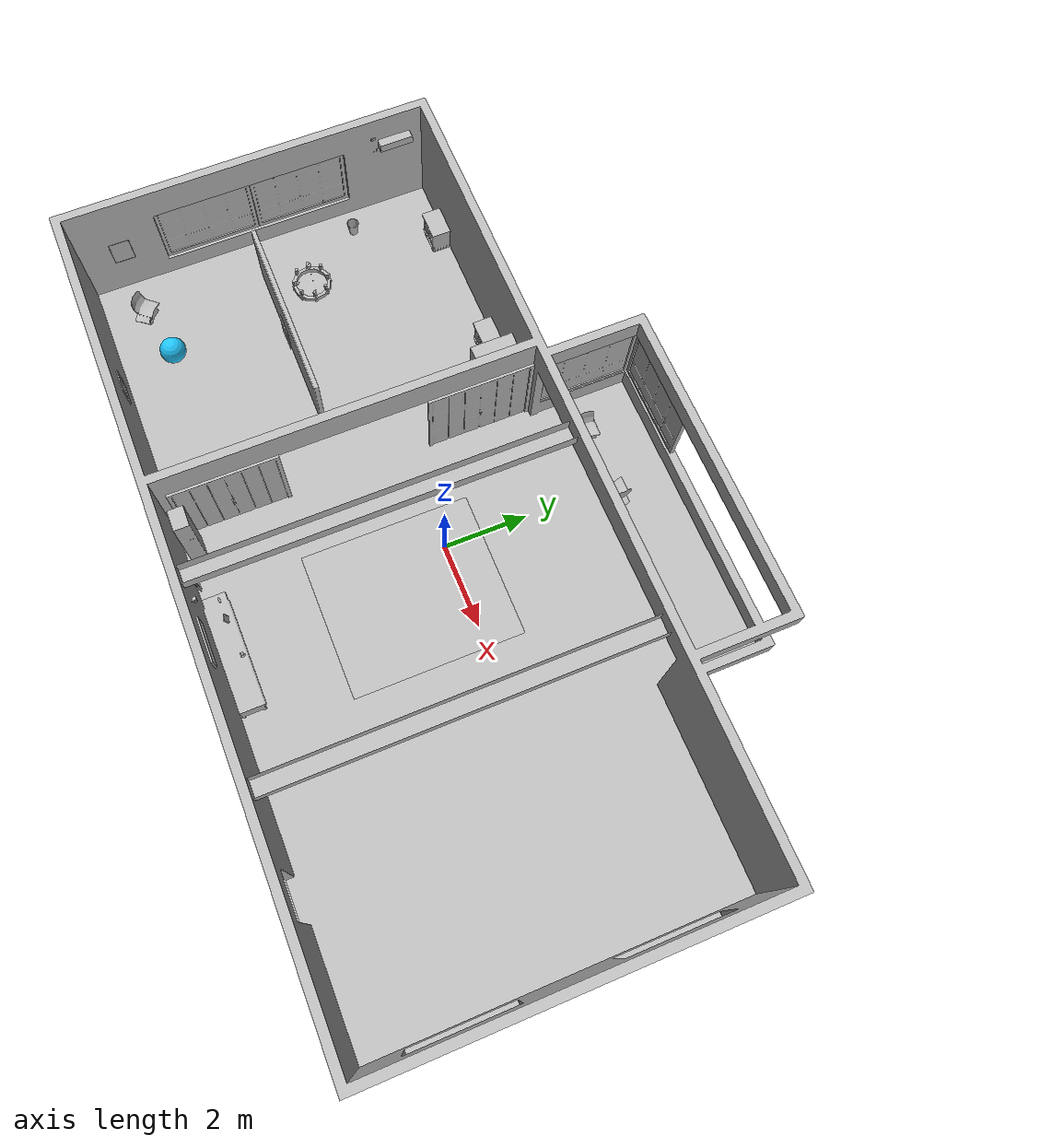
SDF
<sdf version="1.6">
 <world name="default">
  <model name="AirconditionerA_01_001">
   <link name="aws_robomaker_residential_AirconditionerA_01::link">
    <inertial><mass>1</mass></inertial>
    <collision name="collision">
     <geometry>
      <mesh>
       <uri>file://models/aws_robomaker_residential_AirconditionerA_01/meshes/aws_AirconditionerA_01_collision.DAE</uri>
       <scale>1 1 1</scale>
      </mesh>
     </geometry>
    </collision>
    <visual name="visual">
     <geometry>
      <mesh>
       <uri>file://models/aws_robomaker_residential_AirconditionerA_01/meshes/aws_AirconditionerA_01_visual.DAE</uri>
      </mesh>
     </geometry>
     <meta><layer>1</layer></meta>
    </visual>
   </link>
   <static>1</static>
   <pose>-9.19941 2.41123 2.08454 0 -0 0</pose>
  </model>
  <model name="AirconditionerB_01_001">
   <link name="aws_robomaker_residential_AirconditionerB_01::link">
    <inertial>
     <mass>1</mass>
     <inertia><ixx>1</ixx><ixy>0</ixy><ixz>0</ixz><iyy>1</iyy><iyz>0</iyz><izz>1</izz></inertia>
    </inertial>
    <collision name="collision">
     <geometry>
      <mesh>
       <uri>file://models/aws_robomaker_residential_AirconditionerB_01/meshes/aws_AirconditionerB_01_collision.DAE</uri>
       <scale>1 1 1</scale>
      </mesh>
     </geometry>
    </collision>
    <visual name="visual">
     <geometry>
      <mesh>
       <uri>file://models/aws_robomaker_residential_AirconditionerB_01/meshes/aws_AirconditionerB_01_visual.DAE</uri>
      </mesh>
     </geometry>
     <meta><layer>1</layer></meta>
    </visual>
   </link>
   <pose>-2.00466 -5.22661 0.003485 -0 -0 -0</pose>
  </model>
  <model name="Ball_01_003">
   <link name="aws_robomaker_residential_Ball_01::link">
    <inertial>
     <mass>0.12</mass>
     <inertia>
      <ixx>0.030752</ixx>
      <ixy>0</ixy>
      <ixz>0</ixz>
      <iyy>0.030752</iyy>
      <iyz>0</iyz>
      <izz>0.030752</izz>
     </inertia>
    </inertial>
    <collision name="collision">
     <geometry><sphere><radius>0.31</radius></sphere></geometry>
     <surface>
      <friction><ode><mu>0.85</mu><mu2>0.85</mu2></ode></friction>
      <contact><ode><kd>8500</kd><max_vel>5.1</max_vel></ode></contact>
     </surface>
    </collision>
    <visual name="visual">
     <geometry><sphere><radius>0.31</radius></sphere></geometry>
     <material><diffuse>0.12 0.76 0.97 1</diffuse><ambient>0.03 0.21 0.27 1</ambient></material>
     <meta><layer>1</layer></meta>
    </visual>
   </link>
   <pose>-6.9455 -4.22174 0.31 0 -0 0</pose>
  </model>
  <model name="NightStand_01_001">
   <link name="aws_robomaker_residential_NightStand_01::link">
    <inertial>
     <mass>13.6</mass>
     <inertia><ixx>0.6165</ixx><ixy>0</ixy><ixz>0</ixz><iyy>1.29664</iyy><iyz>0</iyz><izz>0.7706</izz></inertia>
    </inertial>
    <collision name="collision">
     <geometry>
      <mesh>
       <uri>file://models/aws_robomaker_residential_NightStand_01/meshes/aws_NightStand_01_collision.DAE</uri>
       <scale>1 1 1</scale>
      </mesh>
     </geometry>
    </collision>
    <visual name="visual">
     <geometry>
      <mesh>
       <uri>file://models/aws_robomaker_residential_NightStand_01/meshes/aws_NightStand_01_visual.DAE</uri>
      </mesh>
     </geometry>
     <meta><layer>1</layer></meta>
    </visual>
   </link>
   <static>1</static>
   <pose>-7.72551 2.86042 0.005258 -2e-06 0 0</pose>
  </model>
  <model name="NightStand_01_002">
   <link name="aws_robomaker_residential_NightStand_01::link">
    <inertial>
     <mass>13.6</mass>
     <inertia><ixx>0.6165</ixx><ixy>0</ixy><ixz>0</ixz><iyy>1.29664</iyy><iyz>0</iyz><izz>0.7706</izz></inertia>
    </inertial>
    <collision name="collision">
     <geometry>
      <mesh>
       <uri>file://models/aws_robomaker_residential_NightStand_01/meshes/aws_NightStand_01_collision.DAE</uri>
       <scale>1 1 1</scale>
      </mesh>
     </geometry>
    </collision>
    <visual name="visual">
     <geometry>
      <mesh>
       <uri>file://models/aws_robomaker_residential_NightStand_01/meshes/aws_NightStand_01_visual.DAE</uri>
      </mesh>
     </geometry>
     <meta><layer>1</layer></meta>
    </visual>
   </link>
   <static>1</static>
   <pose>-4.40734 2.86042 0.005256 0 2e-06 0</pose>
  </model>
  <model name="ChairD_01_001">
   <link name="aws_robomaker_residential_ChairD_01::link">
    <inertial>
     <mass>4.5</mass>
     <inertia><ixy>0</ixy><ixz>0</ixz><iyz>0</iyz><ixx>0.217</ixx><iyy>0.217</iyy><izz>0.067</izz></inertia>
    </inertial>
    <collision name="collision">
     <geometry>
      <mesh>
       <uri>file://models/aws_robomaker_residential_ChairD_01/meshes/aws_ChairD_01_collision.DAE</uri>
       <scale>1 1 1</scale>
      </mesh>
     </geometry>
    </collision>
    <visual name="visual">
     <geometry>
      <mesh><uri>file://models/aws_robomaker_residential_ChairD_01/meshes/aws_ChairD_01_visual.DAE</uri></mesh>
     </geometry>
     <meta><layer>1</layer></meta>
    </visual>
   </link>
   <pose>-1.38078 4.10446 -0.000249 0 0.000976 0</pose>
  </model>
  <model name="ChairD_01_002">
   <link name="aws_robomaker_residential_ChairD_01::link">
    <inertial>
     <mass>4.5</mass>
     <inertia><ixy>0</ixy><ixz>0</ixz><iyz>0</iyz><ixx>0.217</ixx><iyy>0.217</iyy><izz>0.067</izz></inertia>
    </inertial>
    <collision name="collision">
     <geometry>
      <mesh>
       <uri>file://models/aws_robomaker_residential_ChairD_01/meshes/aws_ChairD_01_collision.DAE</uri>
       <scale>1 1 1</scale>
      </mesh>
     </geometry>
    </collision>
    <visual name="visual">
     <geometry>
      <mesh><uri>file://models/aws_robomaker_residential_ChairD_01/meshes/aws_ChairD_01_visual.DAE</uri></mesh>
     </geometry>
     <meta><layer>1</layer></meta>
    </visual>
   </link>
   <pose>0.325214 4.10446 -0.000249 0 0.000976 -3.13874</pose>
  </model>
  <model name="ChairD_01_003">
   <link name="aws_robomaker_residential_ChairD_01::link">
    <inertial>
     <mass>4.5</mass>
     <inertia><ixy>0</ixy><ixz>0</ixz><iyz>0</iyz><ixx>0.217</ixx><iyy>0.217</iyy><izz>0.067</izz></inertia>
    </inertial>
    <collision name="collision">
     <geometry>
      <mesh>
       <uri>file://models/aws_robomaker_residential_ChairD_01/meshes/aws_ChairD_01_collision.DAE</uri>
       <scale>1 1 1</scale>
      </mesh>
     </geometry>
    </collision>
    <visual name="visual">
     <geometry>
      <mesh><uri>file://models/aws_robomaker_residential_ChairD_01/meshes/aws_ChairD_01_visual.DAE</uri></mesh>
     </geometry>
     <meta><layer>1</layer></meta>
    </visual>
   </link>
   <pose>-8.27078 -4.50446 -0.000249 0 0.000976 0.869673</pose>
  </model>
  <model name="Chandelier_01_002">
   <link name="aws_robomaker_residential_Chandelier_01::link">
    <inertial><mass>1</mass></inertial>
    <collision name="collision">
     <geometry>
      <mesh>
       <uri>file://models/aws_robomaker_residential_Chandelier_01/meshes/aws_Chandelier_01_collision.DAE</uri>
       <scale>1 1 1</scale>
      </mesh>
     </geometry>
    </collision>
    <visual name="visual">
     <geometry>
      <mesh>
       <uri>file://models/aws_robomaker_residential_Chandelier_01/meshes/aws_Chandelier_01_visual.DAE</uri>
      </mesh>
     </geometry>
     <meta><layer>2</layer></meta>
    </visual>
   </link>
   <static>1</static>
   <pose>-6.45106 -0.69204 1.81 0 -0 0</pose>
  </model>
  <model name="Carpet_01_001">
   <link name="aws_robomaker_residential_Carpet_01::link">
    <inertial><mass>8.1</mass></inertial>
    <collision name="collision">
     <geometry>
      <mesh>
       <uri>file://models/aws_robomaker_residential_Carpet_01/meshes/aws_Carpet_01_collision.DAE</uri>
       <scale>1 1 0.95</scale>
      </mesh>
     </geometry>
     <pose>0 0 -0.01 0 -0 0</pose>
    </collision>
    <visual name="visual">
     <geometry>
      <mesh><uri>file://models/aws_robomaker_residential_Carpet_01/meshes/aws_Carpet_01_visual.DAE</uri></mesh>
     </geometry>
     <meta><layer>1</layer></meta>
    </visual>
   </link>
   <static>1</static>
   <pose>0.78505 -1.10665 0.001106 0 -0 0</pose>
  </model>
  <model name="SecurityCamera_01_001">
   <link name="aws_robomaker_residential_SecurityCamera_01::link">
    <inertial>
     <mass>1</mass>
     <inertia>
      <ixx>18.2222</ixx>
      <ixy>0</ixy>
      <ixz>0</ixz>
      <iyy>18.2222</iyy>
      <iyz>0</iyz>
      <izz>0.0018767</izz>
     </inertia>
    </inertial>
    <collision name="collision">
     <geometry>
      <mesh>
       <uri>file://models/aws_robomaker_residential_SecurityCamera_01/meshes/aws_SecurityCamera_01_collision.DAE</uri>
       <scale>1 1 1</scale>
      </mesh>
     </geometry>
    </collision>
    <visual name="visual">
     <geometry>
      <mesh>
       <uri>file://models/aws_robomaker_residential_SecurityCamera_01/meshes/aws_SecurityCamera_01_visual.DAE</uri>
      </mesh>
     </geometry>
     <meta><layer>2</layer></meta>
    </visual>
   </link>
   <pose>0.842134 -4.99629 0.492564 1e-06 -3e-06 -2.84104</pose>
  </model>
  <model name="FoldingDoor_01_001">
   <link name="aws_robomaker_residential_FoldingDoor_01::link">
    <inertial><mass>1</mass></inertial>
    <collision name="collision">
     <geometry>
      <mesh>
       <uri>file://models/aws_robomaker_residential_FoldingDoor_01/meshes/aws_FoldingDoor_01_collision.DAE</uri>
       <scale>1 1 1</scale>
      </mesh>
     </geometry>
    </collision>
    <visual name="visual">
     <geometry>
      <mesh>
       <uri>file://models/aws_robomaker_residential_FoldingDoor_01/meshes/aws_FoldingDoor_01_visual.DAE</uri>
      </mesh>
     </geometry>
     <meta><layer>2</layer></meta>
    </visual>
   </link>
   <static>1</static>
   <pose>-2.4611 1.84422 0.041881 0 -0 0</pose>
  </model>
  <model name="FoldingDoor_01_002">
   <link name="aws_robomaker_residential_FoldingDoor_01::link">
    <inertial><mass>1</mass></inertial>
    <collision name="collision">
     <geometry>
      <mesh>
       <uri>file://models/aws_robomaker_residential_FoldingDoor_01/meshes/aws_FoldingDoor_01_collision.DAE</uri>
       <scale>1 1 1</scale>
      </mesh>
     </geometry>
    </collision>
    <visual name="visual">
     <geometry>
      <mesh>
       <uri>file://models/aws_robomaker_residential_FoldingDoor_01/meshes/aws_FoldingDoor_01_visual.DAE</uri>
      </mesh>
     </geometry>
     <meta><layer>2</layer></meta>
    </visual>
   </link>
   <static>1</static>
   <pose>-2.4611 -4.05332 0.041881 0 -0 0</pose>
  </model>
  <model name="HouseWallB_01_001">
   <link name="aws_robomaker_residential_HouseWallB_01::link">
    <inertial><mass>1</mass></inertial>
    <collision name="collision">
     <geometry>
      <mesh>
       <uri>file://models/aws_robomaker_residential_HouseWallB_01/meshes/aws_HouseWallB_01_collision.DAE</uri>
       <scale>1 1 1</scale>
      </mesh>
     </geometry>
    </collision>
    <visual name="visual">
     <geometry>
      <mesh>
       <uri>file://models/aws_robomaker_residential_HouseWallB_01/meshes/aws_HouseWallB_01_visual.DAE</uri>
      </mesh>
     </geometry>
     <meta><layer>2</layer></meta>
    </visual>
   </link>
   <static>1</static>
  </model>
  <model name="FloorB_01_001">
   <link name="aws_robomaker_residential_FloorB_01::link">
    <inertial><mass>100</mass></inertial>
    <collision name="collision">
     <geometry>
      <mesh>
       <uri>file://models/aws_robomaker_residential_FloorB_01/meshes/aws_FloorB_01_collision.DAE</uri>
       <scale>1 1 0.9</scale>
      </mesh>
     </geometry>
     <surface><friction><ode><mu>0.6</mu><mu2>0.6</mu2></ode></friction></surface>
    </collision>
    <visual name="visual">
     <geometry>
      <mesh><uri>file://models/aws_robomaker_residential_FloorB_01/meshes/aws_FloorB_01_visual.DAE</uri></mesh>
     </geometry>
     <meta><layer>1</layer></meta>
    </visual>
   </link>
   <static>1</static>
  </model>
  <model name="LightC_01_002">
   <link name="aws_robomaker_residential_LightC_01::link">
    <inertial><mass>1</mass></inertial>
    <collision name="collision">
     <geometry>
      <mesh>
       <uri>file://models/aws_robomaker_residential_LightC_01/meshes/aws_LightC_01_collision.DAE</uri>
       <scale>1 1 1</scale>
      </mesh>
     </geometry>
    </collision>
    <visual name="visual">
     <geometry>
      <mesh><uri>file://models/aws_robomaker_residential_LightC_01/meshes/aws_LightC_01_visual.DAE</uri></mesh>
     </geometry>
     <meta><layer>2</layer></meta>
    </visual>
   </link>
   <static>1</static>
   <pose>-0.138245 -5.44437 2 0 -0 0</pose>
  </model>
  <model name="PortraitA_01">
   <link name="aws_robomaker_residential_PortraitA_01::link">
    <inertial><mass>1</mass></inertial>
    <collision name="collision">
     <geometry>
      <mesh>
       <uri>file://models/aws_robomaker_residential_PortraitA_01/meshes/aws_PortraitA_01_collision.DAE</uri>
       <scale>1 1 1</scale>
      </mesh>
     </geometry>
    </collision>
    <visual name="visual">
     <geometry>
      <mesh>
       <uri>file://models/aws_robomaker_residential_PortraitA_01/meshes/aws_PortraitA_01_visual.DAE</uri>
      </mesh>
     </geometry>
     <meta><layer>2</layer></meta>
    </visual>
   </link>
   <static>1</static>
   <pose>-2.71236 -4.81754 1 0 -0 1.5668</pose>
  </model>
  <model name="PortraitB_01">
   <link name="aws_robomaker_residential_PortraitB_01::link">
    <inertial><mass>1</mass></inertial>
    <collision name="collision">
     <geometry>
      <mesh>
       <uri>file://models/aws_robomaker_residential_PortraitB_01/meshes/aws_PortraitB_01_collision.DAE</uri>
       <scale>1 1 1</scale>
      </mesh>
     </geometry>
    </collision>
    <visual name="visual">
     <geometry>
      <mesh>
       <uri>file://models/aws_robomaker_residential_PortraitB_01/meshes/aws_PortraitB_01_visual.DAE</uri>
      </mesh>
     </geometry>
     <meta><layer>2</layer></meta>
    </visual>
   </link>
   <static>1</static>
   <pose>-1.27968 -5.42963 0 -0.076901 0 -3.11672</pose>
  </model>
  <model name="PortraitC_01">
   <link name="aws_robomaker_residential_PortraitC_01::link">
    <inertial><mass>1</mass></inertial>
    <collision name="collision">
     <geometry>
      <mesh>
       <uri>file://models/aws_robomaker_residential_PortraitC_01/meshes/aws_PortraitC_01_collision.DAE</uri>
       <scale>1 1 1</scale>
      </mesh>
     </geometry>
    </collision>
    <visual name="visual">
     <geometry>
      <mesh>
       <uri>file://models/aws_robomaker_residential_PortraitC_01/meshes/aws_PortraitC_01_visual.DAE</uri>
      </mesh>
     </geometry>
     <meta><layer>2</layer></meta>
    </visual>
   </link>
   <static>1</static>
   <pose>-9.2949 -4.52608 1 0 -0 1.55473</pose>
  </model>
  <model name="PortraitD_01">
   <link name="aws_robomaker_residential_PortraitD_01::link">
    <inertial><mass>1.5</mass></inertial>
    <collision name="collision">
     <geometry>
      <mesh>
       <uri>file://models/aws_robomaker_residential_PortraitD_01/meshes/aws_PortraitD_01_collision.DAE</uri>
       <scale>1 1 1</scale>
      </mesh>
     </geometry>
    </collision>
    <visual name="visual">
     <geometry>
      <mesh>
       <uri>file://models/aws_robomaker_residential_PortraitD_01/meshes/aws_PortraitD_01_visual.DAE</uri>
      </mesh>
     </geometry>
     <meta><layer>2</layer></meta>
    </visual>
   </link>
   <static>1</static>
   <pose>0.789763 -5.47872 1.8 0 -0 3.13853</pose>
  </model>
  <model name="PortraitE_01">
   <link name="aws_robomaker_residential_PortraitE_01::link">
    <inertial><mass>1</mass></inertial>
    <collision name="collision">
     <geometry>
      <mesh>
       <uri>file://models/aws_robomaker_residential_PortraitE_01/meshes/aws_PortraitE_01_collision.DAE</uri>
       <scale>1 1 1</scale>
      </mesh>
     </geometry>
    </collision>
    <visual name="visual">
     <geometry>
      <mesh>
       <uri>file://models/aws_robomaker_residential_PortraitE_01/meshes/aws_PortraitE_01_visual.DAE</uri>
      </mesh>
     </geometry>
     <meta><layer>2</layer></meta>
    </visual>
   </link>
   <static>1</static>
   <pose>-5.77309 -5.49247 1 0 -0 3.13263</pose>
  </model>
  <model name="PortraitE_02">
   <link name="aws_robomaker_residential_PortraitE_02::link">
    <inertial><mass>1</mass></inertial>
    <collision name="collision">
     <geometry>
      <mesh>
       <uri>file://models/aws_robomaker_residential_PortraitE_02/meshes/aws_PortraitE_01_collision.DAE</uri>
       <scale>1 1 1</scale>
      </mesh>
     </geometry>
    </collision>
    <visual name="visual">
     <geometry>
      <mesh>
       <uri>file://models/aws_robomaker_residential_PortraitE_02/meshes/aws_PortraitE_01_visual.DAE</uri>
      </mesh>
     </geometry>
     <meta><layer>2</layer></meta>
    </visual>
   </link>
   <static>1</static>
   <pose>-6.19302 -1.59021 0.3 0 -0 0.00429</pose>
  </model>
  <model name="DeskPortraitA_01">
   <link name="aws_robomaker_residential_DeskPortraitA_01::link">
    <inertial>
     <mass>1</mass>
     <inertia><ixx>0.0835</ixx><ixy>0</ixy><ixz>0</ixz><iyy>0.16</iyy><iyz>0</iyz><izz>0.08347</izz></inertia>
    </inertial>
    <collision name="collision">
     <geometry>
      <mesh>
       <uri>file://models/aws_robomaker_residential_DeskPortraitA_01/meshes/aws_DeskPortraitA_01_collision.DAE</uri>
       <scale>1 1 1</scale>
      </mesh>
     </geometry>
    </collision>
    <visual name="visual">
     <geometry>
      <mesh>
       <uri>file://models/aws_robomaker_residential_DeskPortraitA_01/meshes/aws_DeskPortraitA_01_visual.DAE</uri>
      </mesh>
     </geometry>
     <meta><layer>1</layer></meta>
    </visual>
   </link>
   <pose>-0.036864 -5.11016 0.492604 -0.000543 -0 2.92778</pose>
  </model>
  <model name="DeskPortraitD_02">
   <link name="aws_robomaker_residential_DeskPortraitD_02::link">
    <inertial>
     <mass>0.4</mass>
     <inertia><ixx>0.0616</ixx><ixy>0</ixy><ixz>0</ixz><iyy>0.1313</iyy><iyz>0</iyz><izz>0.0803</izz></inertia>
    </inertial>
    <collision name="collision">
     <geometry>
      <mesh>
       <uri>file://models/aws_robomaker_residential_DeskPortraitD_02/meshes/aws_DeskPortraitD_01_collision.DAE</uri>
       <scale>1 1 1</scale>
      </mesh>
     </geometry>
     <surface>
      <friction><ode><mu>0.7</mu><mu2>0.7</mu2></ode></friction>
      <contact><ode><kd>28500</kd></ode></contact>
     </surface>
    </collision>
    <visual name="visual">
     <geometry>
      <mesh>
       <uri>file://models/aws_robomaker_residential_DeskPortraitD_02/meshes/aws_DeskPortraitD_01_visual.DAE</uri>
      </mesh>
     </geometry>
     <meta><layer>1</layer></meta>
    </visual>
   </link>
   <pose>-0.589211 -5.10989 0.192362 2e-06 -0 -3.11254</pose>
  </model>
  <model name="Trash_01_002">
   <link name="aws_robomaker_residential_Trash_01::link">
    <inertial>
     <mass>0.1</mass>
     <inertia><ixy>0</ixy><ixz>0</ixz><iyz>0</iyz><ixx>0.05288</ixx><iyy>0.05288</iyy><izz>0.09132</izz></inertia>
    </inertial>
    <collision name="collision">
     <geometry>
      <mesh>
       <uri>file://models/aws_robomaker_residential_Trash_01/meshes/aws_Trash_01_collision.DAE</uri>
       <scale>1 1 1</scale>
      </mesh>
     </geometry>
    </collision>
    <visual name="visual">
     <geometry>
      <mesh><uri>file://models/aws_robomaker_residential_Trash_01/meshes/aws_Trash_01_visual.DAE</uri></mesh>
     </geometry>
     <meta><layer>1</layer></meta>
    </visual>
   </link>
   <pose>-8.70415 1.00058 0.000903 0 -1e-06 0</pose>
  </model>
  <model name="TVCabinet_01_001">
   <link name="aws_robomaker_residential_TVCabinet_01::link">
    <inertial>
     <mass>59.2</mass>
     <inertia><ixx>30.4</ixx><ixy>0</ixy><ixz>0</ixz><iyy>2.56</iyy><iyz>0</iyz><izz>31.38</izz></inertia>
    </inertial>
    <collision name="collision">
     <geometry>
      <mesh>
       <uri>file://models/aws_robomaker_residential_TVCabinet_01/meshes/aws_TVCabinet_01_collision.DAE</uri>
       <scale>1 1 1</scale>
      </mesh>
     </geometry>
    </collision>
    <visual name="visual">
     <geometry>
      <mesh>
       <uri>file://models/aws_robomaker_residential_TVCabinet_01/meshes/aws_TVCabinet_01_visual.DAE</uri>
      </mesh>
     </geometry>
     <meta><layer>1</layer></meta>
    </visual>
   </link>
   <static>1</static>
   <pose>0.629509 -5.18358 -0.017049 0 -0 1.5792</pose>
  </model>
  <model name="RoomWall_01_001">
   <link name="aws_robomaker_residential_RoomWall_01::link">
    <inertial><mass>100</mass></inertial>
    <collision name="collision">
     <geometry>
      <mesh>
       <uri>file://models/aws_robomaker_residential_RoomWall_01/meshes/aws_RoomWall_01_collision.DAE</uri>
       <scale>1 1 1</scale>
      </mesh>
     </geometry>
    </collision>
    <visual name="visual">
     <geometry>
      <mesh><uri>file://models/aws_robomaker_residential_RoomWall_01/meshes/aws_RoomWall_01_visual.DAE</uri></mesh>
     </geometry>
     <meta><layer>2</layer></meta>
    </visual>
   </link>
   <static>1</static>
   <pose>-6.09755 -1.49618 0.028124 0 -0 0</pose>
  </model>
  <model name="Wardrobe_01_001">
   <link name="aws_robomaker_residential_Wardrobe_01::link">
    <inertial><mass>51.7</mass></inertial>
    <collision name="collision">
     <geometry>
      <mesh>
       <uri>file://models/aws_robomaker_residential_Wardrobe_01/meshes/aws_Wardrobe_01_collision.DAE</uri>
       <scale>1 1 1</scale>
      </mesh>
     </geometry>
    </collision>
    <visual name="visual">
     <geometry>
      <mesh><uri>file://models/aws_robomaker_residential_Wardrobe_01/meshes/aws_Wardrobe_01_visual.DAE</uri></mesh>
     </geometry>
     <meta><layer>1</layer></meta>
    </visual>
   </link>
   <static>1</static>
   <pose>-3.14671 2.4762 0.000704 0 0 -1.56967</pose>
  </model>
  <model name="RoomWindow_01_001">
   <link name="aws_robomaker_residential_RoomWindow_01::link">
    <inertial><mass>1</mass></inertial>
    <collision name="collision">
     <geometry>
      <mesh>
       <uri>file://models/aws_robomaker_residential_RoomWindow_01/meshes/aws_RoomWindow_01_collision.DAE</uri>
       <scale>1 1 1</scale>
      </mesh>
     </geometry>
    </collision>
    <visual name="visual">
     <geometry>
      <mesh>
       <uri>file://models/aws_robomaker_residential_RoomWindow_01/meshes/aws_RoomWindow_01_visual.DAE</uri>
      </mesh>
     </geometry>
     <meta><layer>2</layer></meta>
    </visual>
   </link>
   <static>1</static>
   <pose>-9.4186 -0.026285 0.502739 0 -0 0</pose>
  </model>
  <model name="RoomWindow_01_002">
   <link name="aws_robomaker_residential_RoomWindow_01::link">
    <inertial><mass>1</mass></inertial>
    <collision name="collision">
     <geometry>
      <mesh>
       <uri>file://models/aws_robomaker_residential_RoomWindow_01/meshes/aws_RoomWindow_01_collision.DAE</uri>
       <scale>1 1 1</scale>
      </mesh>
     </geometry>
    </collision>
    <visual name="visual">
     <geometry>
      <mesh>
       <uri>file://models/aws_robomaker_residential_RoomWindow_01/meshes/aws_RoomWindow_01_visual.DAE</uri>
      </mesh>
     </geometry>
     <meta><layer>2</layer></meta>
    </visual>
   </link>
   <static>1</static>
   <pose>-9.4186 -2.37409 0.502739 0 -0 0</pose>
  </model>
  <model name="RoomWindow_01_008">
   <link name="aws_robomaker_residential_RoomWindow_01::link">
    <inertial><mass>1</mass></inertial>
    <collision name="collision">
     <geometry>
      <mesh>
       <uri>file://models/aws_robomaker_residential_RoomWindow_01/meshes/aws_RoomWindow_01_collision.DAE</uri>
       <scale>1 1 1</scale>
      </mesh>
     </geometry>
    </collision>
    <visual name="visual">
     <geometry>
      <mesh>
       <uri>file://models/aws_robomaker_residential_RoomWindow_01/meshes/aws_RoomWindow_01_visual.DAE</uri>
      </mesh>
     </geometry>
     <meta><layer>2</layer></meta>
    </visual>
   </link>
   <static>1</static>
   <pose>-1.19934 5.60069 0.502739 0 0 -1.56627</pose>
  </model>
  <model name="RoomWindow_01_009">
   <link name="aws_robomaker_residential_RoomWindow_01::link">
    <inertial><mass>1</mass></inertial>
    <collision name="collision">
     <geometry>
      <mesh>
       <uri>file://models/aws_robomaker_residential_RoomWindow_01/meshes/aws_RoomWindow_01_collision.DAE</uri>
       <scale>1 1 1</scale>
      </mesh>
     </geometry>
    </collision>
    <visual name="visual">
     <geometry>
      <mesh>
       <uri>file://models/aws_robomaker_residential_RoomWindow_01/meshes/aws_RoomWindow_01_visual.DAE</uri>
      </mesh>
     </geometry>
     <meta><layer>2</layer></meta>
    </visual>
   </link>
   <static>1</static>
   <pose>-2.39662 4.38761 0.502739 0 -0 0</pose>
  </model>
 </world>
</sdf>
